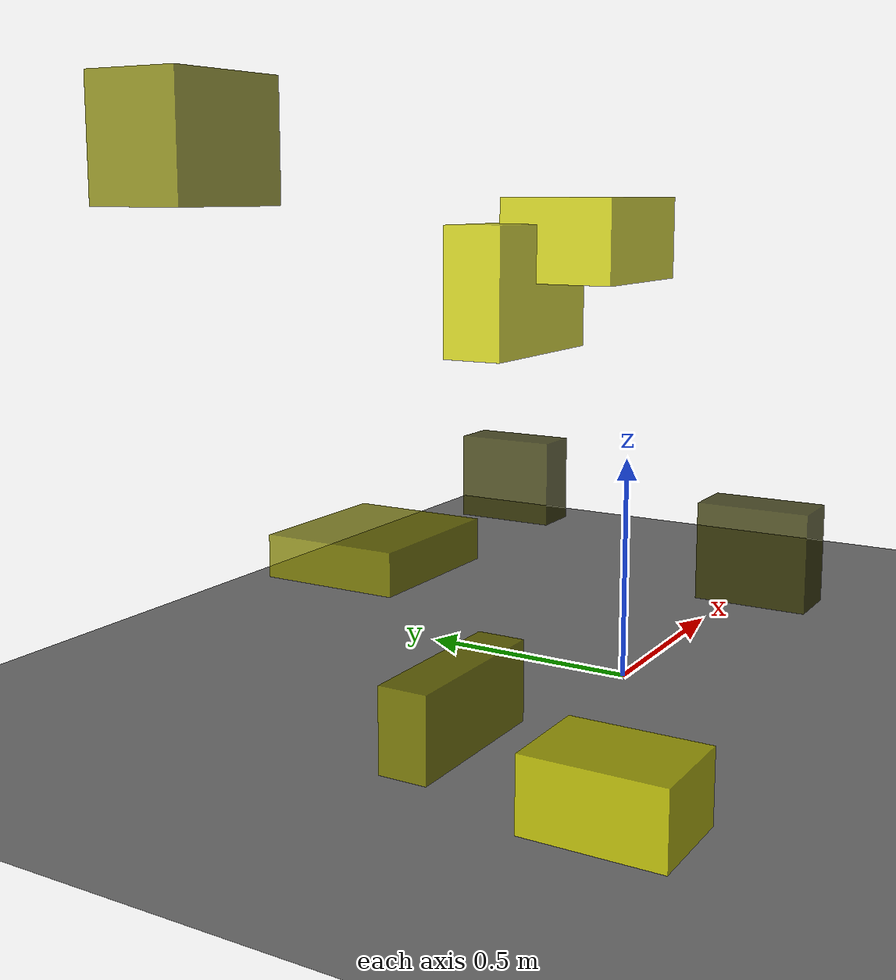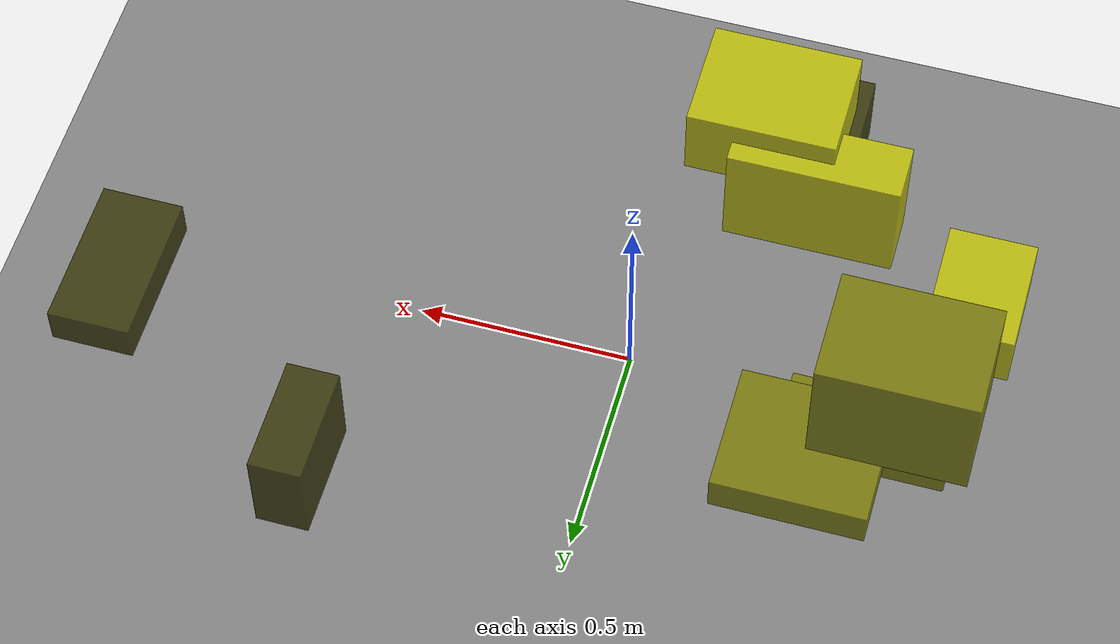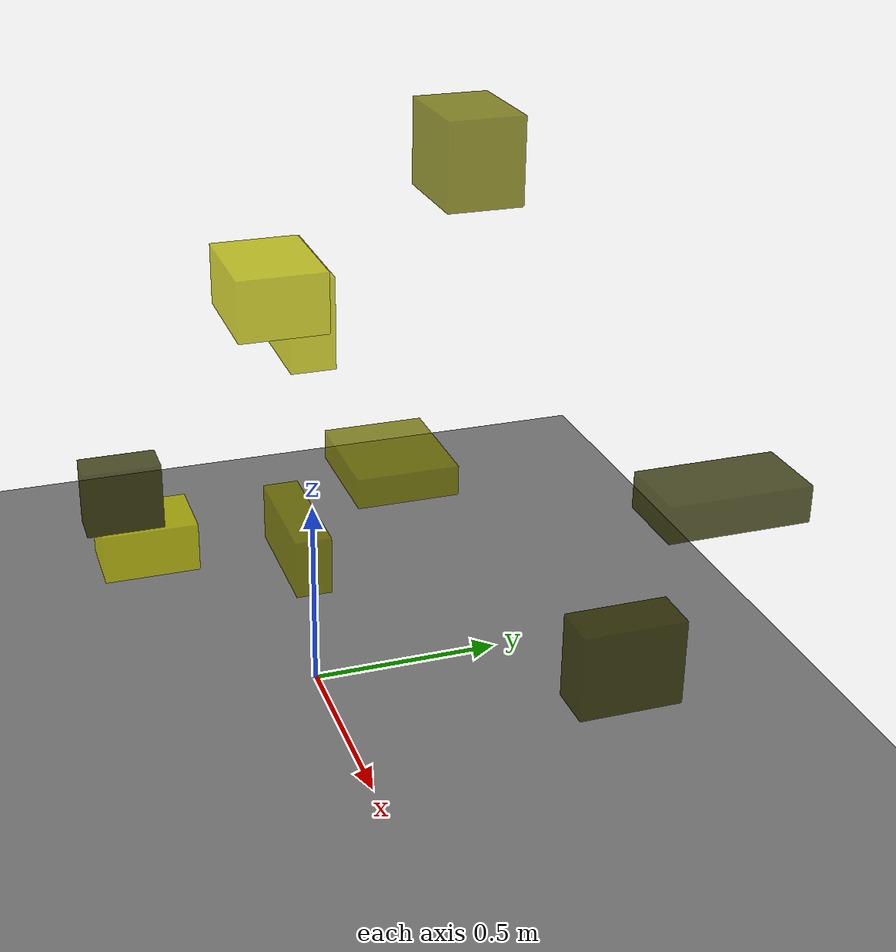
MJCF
<?xml version="1.0"?>
<mujoco model="obstacle_scene">
  <compiler angle="radian" coordinate="local"/>
  <option timestep="0.001" gravity="0 0 -9.81"/>

  <asset>
    <material name="obstacle_mat" rgba="0.8 0.8 0.0 0.8"/>
    <material name="ground_mat" rgba="0.5 0.5 0.5 1"/>
  </asset>

  <worldbody>
    <!-- Ground plane -->
    <geom name="ground" type="plane" size="3 3 0.1" material="ground_mat"/>

    <!-- Obstacles -->
    <body name="obstacle_0" pos="0.580742 0.594407 0.297417">
      <geom name="obs_0" type="box" size="0.059097 0.130811 0.111993" rgba="0.2 0.2 0.0 0.8"/>
    </body>
    <body name="obstacle_1" pos="-0.576158 0.103395 0.098555">
      <geom name="obs_1" type="box" size="0.189053 0.052336 0.087178" rgba="0.5 0.5 0.0 0.8"/>
    </body>
    <body name="obstacle_2" pos="-0.278517 -0.029071 0.992448">
      <geom name="obs_2" type="box" size="0.152449 0.117416 0.081325" rgba="0.8 0.8 0.0 0.8"/>
    </body>
    <body name="obstacle_3" pos="-0.365420 -0.426762 0.428695">
      <geom name="obs_3" type="box" size="0.051582 0.102695 0.090271" rgba="0.2 0.2 0.0 0.8"/>
    </body>
    <body name="obstacle_4" pos="-0.683222 0.651392 1.184838">
      <geom name="obs_4" type="box" size="0.153064 0.112478 0.128557" rgba="0.5 0.5 0.0 0.8"/>
    </body>
    <body name="obstacle_5" pos="-0.743084 -0.314379 0.079833">
      <geom name="obs_5" type="box" size="0.102707 0.138946 0.073463" rgba="0.8 0.8 0.0 0.8"/>
    </body>
    <body name="obstacle_6" pos="0.901503 0.624953 0.878439">
      <geom name="obs_6" type="box" size="0.083951 0.157863 0.040997" rgba="0.2 0.2 0.0 0.8"/>
    </body>
    <body name="obstacle_7" pos="-0.470332 0.355436 0.357662">
      <geom name="obs_7" type="box" size="0.169241 0.145385 0.043551" rgba="0.5 0.5 0.0 0.8"/>
    </body>
    <body name="obstacle_8" pos="-0.397930 0.068495 0.898581">
      <geom name="obs_8" type="box" size="0.177040 0.060348 0.125171" rgba="0.8 0.8 0.0 0.8"/>
    </body>
  </worldbody>
</mujoco>
